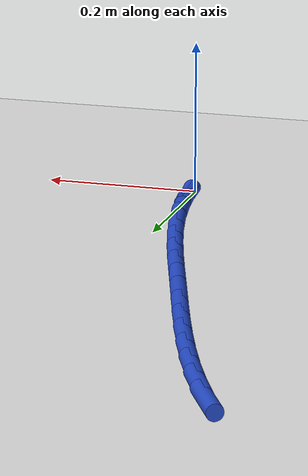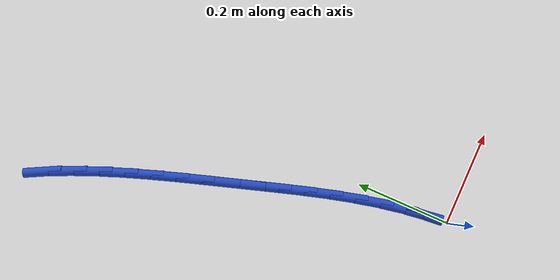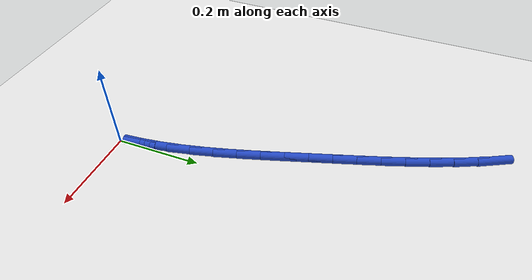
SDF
<sdf version="1.6">
 <world name="default">
  <model name="ground_plane">
   <static>1</static>
   <link name="link">
    <collision name="collision">
     <geometry><plane><normal>0 0 1</normal><size>100 100</size></plane></geometry>
     <surface><friction><ode><mu>100</mu><mu2>50</mu2></ode></friction></surface>
    </collision>
    <visual name="visual">
     <cast_shadows>0</cast_shadows>
     <geometry><plane><normal>0 0 1</normal><size>100 100</size></plane></geometry>
     <material>
      <script><uri>file://media/materials/scripts/gazebo.material</uri><name>Gazebo/WhiteGlow</name></script>
     </material>
    </visual>
   </link>
  </model>
  <model name="line">
   <link name="link_1">
    <pose>-0.004160817956381184 0.053399237261319905 0.01 0 1.57 -1.4353308980526718</pose>
    <collision name="collision">
     <geometry><cylinder><radius>0.01</radius><length>0.08</length></cylinder></geometry>
    </collision>
    <visual name="visual">
     <material>
      <script><name>Gazebo/Blue</name><uri>file://media/materials/scripts/gazebo.material</uri></script>
     </material>
     <geometry><cylinder><radius>0.01</radius><length>0.08</length></cylinder></geometry>
    </visual>
   </link>
   <link name="link_2">
    <pose>-0.011367591553501054 0.10627350995342039 0.01 0 1.57 -1.385889443154771</pose>
    <collision name="collision">
     <geometry><cylinder><radius>0.01</radius><length>0.08</length></cylinder></geometry>
    </collision>
    <visual name="visual">
     <material>
      <script><name>Gazebo/Blue</name><uri>file://media/materials/scripts/gazebo.material</uri></script>
     </material>
     <geometry><cylinder><radius>0.01</radius><length>0.08</length></cylinder></geometry>
    </visual>
   </link>
   <link name="link_3">
    <pose>-0.021170964088978235 0.15868577962882582 0.01 0 1.57 -1.3449548798643165</pose>
    <collision name="collision">
     <geometry><cylinder><radius>0.01</radius><length>0.08</length></cylinder></geometry>
    </collision>
    <visual name="visual">
     <material>
      <script><name>Gazebo/Blue</name><uri>file://media/materials/scripts/gazebo.material</uri></script>
     </material>
     <geometry><cylinder><radius>0.01</radius><length>0.08</length></cylinder></geometry>
    </visual>
   </link>
   <link name="link_4">
    <pose>-0.03312157886043138 0.21069900784006054 0.01 0 1.57 -1.3125814998945433</pose>
    <collision name="collision">
     <geometry><cylinder><radius>0.01</radius><length>0.08</length></cylinder></geometry>
    </collision>
    <visual name="visual">
     <material>
      <script><name>Gazebo/Blue</name><uri>file://media/materials/scripts/gazebo.material</uri></script>
     </material>
     <geometry><cylinder><radius>0.01</radius><length>0.08</length></cylinder></geometry>
    </visual>
   </link>
   <link name="link_5">
    <pose>-0.046770079165479116 0.2623761561396489 0.01 0 1.57 -1.2887208643949528</pose>
    <collision name="collision">
     <geometry><cylinder><radius>0.01</radius><length>0.08</length></cylinder></geometry>
    </collision>
    <visual name="visual">
     <material>
      <script><name>Gazebo/Blue</name><uri>file://media/materials/scripts/gazebo.material</uri></script>
     </material>
     <geometry><cylinder><radius>0.01</radius><length>0.08</length></cylinder></geometry>
    </visual>
   </link>
   <link name="link_6">
    <pose>-0.06166710830174012 0.31378018608011515 0.01 0 1.57 -1.2732926865974128</pose>
    <collision name="collision">
     <geometry><cylinder><radius>0.01</radius><length>0.08</length></cylinder></geometry>
    </collision>
    <visual name="visual">
     <material>
      <script><name>Gazebo/Blue</name><uri>file://media/materials/scripts/gazebo.material</uri></script>
     </material>
     <geometry><cylinder><radius>0.01</radius><length>0.08</length></cylinder></geometry>
    </visual>
   </link>
   <link name="link_7">
    <pose>-0.07736330956683299 0.3649740592139835 0.01 0 1.57 -1.2662359679921242</pose>
    <collision name="collision">
     <geometry><cylinder><radius>0.01</radius><length>0.08</length></cylinder></geometry>
    </collision>
    <visual name="visual">
     <material>
      <script><name>Gazebo/Blue</name><uri>file://media/materials/scripts/gazebo.material</uri></script>
     </material>
     <geometry><cylinder><radius>0.01</radius><length>0.08</length></cylinder></geometry>
    </visual>
   </link>
   <link name="link_8">
    <pose>-0.09340932625837645 0.4160207370937785 0.01 0 1.57 -1.2668757301567348</pose>
    <collision name="collision">
     <geometry><cylinder><radius>0.01</radius><length>0.08</length></cylinder></geometry>
    </collision>
    <visual name="visual">
     <material>
      <script><name>Gazebo/Blue</name><uri>file://media/materials/scripts/gazebo.material</uri></script>
     </material>
     <geometry><cylinder><radius>0.01</radius><length>0.08</length></cylinder></geometry>
    </visual>
   </link>
   <link name="link_9">
    <pose>-0.10939085695951056 0.4669761995077882 0.01 0 1.57 -1.2669979854348807</pose>
    <collision name="collision">
     <geometry><cylinder><radius>0.01</radius><length>0.08</length></cylinder></geometry>
    </collision>
    <visual name="visual">
     <material>
      <script><name>Gazebo/Blue</name><uri>file://media/materials/scripts/gazebo.material</uri></script>
     </material>
     <geometry><cylinder><radius>0.01</radius><length>0.08</length></cylinder></geometry>
    </visual>
   </link>
   <link name="link_10">
    <pose>-0.12532741243108794 0.5178100263105241 0.01 0 1.57 -1.2610130432937554</pose>
    <collision name="collision">
     <geometry><cylinder><radius>0.01</radius><length>0.08</length></cylinder></geometry>
    </collision>
    <visual name="visual">
     <material>
      <script><name>Gazebo/Blue</name><uri>file://media/materials/scripts/gazebo.material</uri></script>
     </material>
     <geometry><cylinder><radius>0.01</radius><length>0.08</length></cylinder></geometry>
    </visual>
   </link>
   <link name="link_11">
    <pose>-0.14153139597585496 0.5684334635947373 0.01 0 1.57 -1.24877902378824</pose>
    <collision name="collision">
     <geometry><cylinder><radius>0.01</radius><length>0.08</length></cylinder></geometry>
    </collision>
    <visual name="visual">
     <material>
      <script><name>Gazebo/Blue</name><uri>file://media/materials/scripts/gazebo.material</uri></script>
     </material>
     <geometry><cylinder><radius>0.01</radius><length>0.08</length></cylinder></geometry>
    </visual>
   </link>
   <link name="link_12">
    <pose>-0.1583207118810469 0.6187566618530104 0.01 0 1.57 -1.2302736473218485</pose>
    <collision name="collision">
     <geometry><cylinder><radius>0.01</radius><length>0.08</length></cylinder></geometry>
    </collision>
    <visual name="visual">
     <material>
      <script><name>Gazebo/Blue</name><uri>file://media/materials/scripts/gazebo.material</uri></script>
     </material>
     <geometry><cylinder><radius>0.01</radius><length>0.08</length></cylinder></geometry>
    </visual>
   </link>
   <link name="link_13">
    <pose>-0.17601326443389884 0.6686897715779242 0.01 0 1.57 -1.2055044147180527</pose>
    <collision name="collision">
     <geometry><cylinder><radius>0.01</radius><length>0.08</length></cylinder></geometry>
    </collision>
    <visual name="visual">
     <material>
      <script><name>Gazebo/Blue</name><uri>file://media/materials/scripts/gazebo.material</uri></script>
     </material>
     <geometry><cylinder><radius>0.01</radius><length>0.08</length></cylinder></geometry>
    </visual>
   </link>
   <link name="link_14">
    <pose>-0.19492695792164585 0.7181429432620606 0.01 0 1.57 -1.1745303983446318</pose>
    <collision name="collision">
     <geometry><cylinder><radius>0.01</radius><length>0.08</length></cylinder></geometry>
    </collision>
    <visual name="visual">
     <material>
      <script><name>Gazebo/Blue</name><uri>file://media/materials/scripts/gazebo.material</uri></script>
     </material>
     <geometry><cylinder><radius>0.01</radius><length>0.08</length></cylinder></geometry>
    </visual>
   </link>
   <link name="link_15">
    <pose>-0.21537969663152312 0.767026327398002 0.01 0 1.57 -1.137490162720606</pose>
    <collision name="collision">
     <geometry><cylinder><radius>0.01</radius><length>0.08</length></cylinder></geometry>
    </collision>
    <visual name="visual">
     <material>
      <script><name>Gazebo/Blue</name><uri>file://media/materials/scripts/gazebo.material</uri></script>
     </material>
     <geometry><cylinder><radius>0.01</radius><length>0.08</length></cylinder></geometry>
    </visual>
   </link>
   <link name="link_16">
    <pose>-0.23768938485076574 0.8152500744783295 0.01 0 1.57 -1.0946333771606531</pose>
    <collision name="collision">
     <geometry><cylinder><radius>0.01</radius><length>0.08</length></cylinder></geometry>
    </collision>
    <visual name="visual">
     <material>
      <script><name>Gazebo/Blue</name><uri>file://media/materials/scripts/gazebo.material</uri></script>
     </material>
     <geometry><cylinder><radius>0.01</radius><length>0.08</length></cylinder></geometry>
    </visual>
   </link>
   <link name="link_141">
    <pose>-0.0042392399548832095 0.053328830220944215 0.01 0 1.57 -1.491470672824504</pose>
    <collision name="collision">
     <geometry><cylinder><radius>0.01</radius><length>0.08</length></cylinder></geometry>
    </collision>
    <visual name="visual">
     <material>
      <script><name>Gazebo/Blue</name><uri>file://media/materials/scripts/gazebo.material</uri></script>
     </material>
     <geometry><cylinder><radius>0.01</radius><length>0.08</length></cylinder></geometry>
    </visual>
   </link>
  </model>
 </world>
</sdf>
